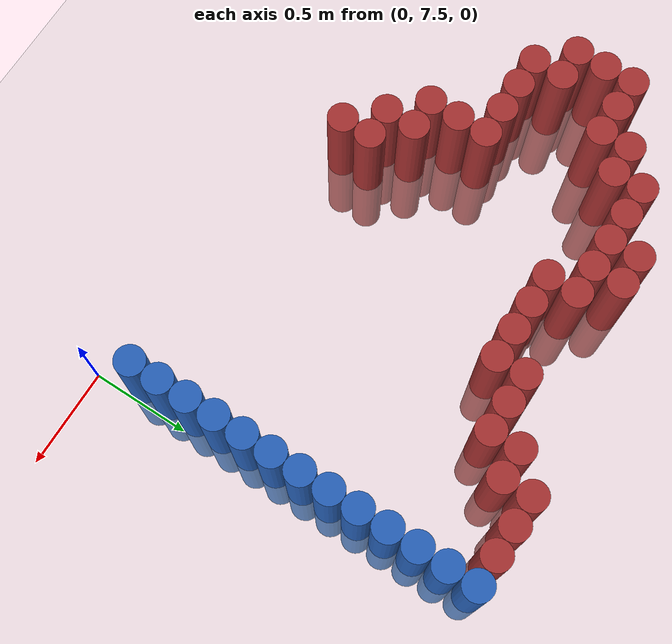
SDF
<sdf version="1.6">
 <world name="default">
  <model name="ground_plane">
   <static>1</static>
   <link name="link">
    <collision name="collision">
     <geometry><plane><normal>0 0 1</normal><size>100 100</size></plane></geometry>
     <surface><friction><ode><mu>100</mu><mu2>50</mu2></ode></friction></surface>
    </collision>
    <visual name="visual">
     <cast_shadows>0</cast_shadows>
     <geometry><plane><normal>0 0 1</normal><size>100 100</size></plane></geometry>
     <material>
      <script><uri>file://media/materials/scripts/gazebo.material</uri><name>Gazebo/Grey</name></script>
     </material>
    </visual>
   </link>
  </model>
  <model name="unit_cylinder_186">
   <static>1</static>
   <pose>-2.475000 8.625000 0.000000 0.000000 0.000000 0.000000</pose>
   <link name="link">
    <inertial>
     <mass>1</mass>
     <inertia><ixx>0.145833</ixx><ixy>0</ixy><ixz>0</ixz><iyy>0.145833</iyy><iyz>0</iyz><izz>0.125</izz></inertia>
    </inertial>
    <collision name="collision">
     <geometry><cylinder><radius>0.075000</radius><length>1</length></cylinder></geometry>
    </collision>
    <visual name="visual">
     <geometry><cylinder><radius>0.075000</radius><length>1</length></cylinder></geometry>
     <material>
      <ambient>0.648000 0.192000 0.192000 1</ambient>
      <diffuse>0.648000 0.192000 0.192000 1</diffuse>
     </material>
     <material>
      <script><name>Gazebo/Grey</name><uri>file://media/materials/scripts/gazebo.material</uri></script>
     </material>
    </visual>
   </link>
  </model>
  <model name="unit_cylinder_187">
   <static>1</static>
   <pose>-2.475000 8.775000 0.000000 0.000000 0.000000 0.000000</pose>
   <link name="link">
    <inertial>
     <mass>1</mass>
     <inertia><ixx>0.145833</ixx><ixy>0</ixy><ixz>0</ixz><iyy>0.145833</iyy><iyz>0</iyz><izz>0.125</izz></inertia>
    </inertial>
    <collision name="collision">
     <geometry><cylinder><radius>0.075000</radius><length>1</length></cylinder></geometry>
    </collision>
    <visual name="visual">
     <geometry><cylinder><radius>0.075000</radius><length>1</length></cylinder></geometry>
     <material>
      <ambient>0.648000 0.192000 0.192000 1</ambient>
      <diffuse>0.648000 0.192000 0.192000 1</diffuse>
     </material>
     <material>
      <script><name>Gazebo/Grey</name><uri>file://media/materials/scripts/gazebo.material</uri></script>
     </material>
    </visual>
   </link>
  </model>
  <model name="unit_cylinder_188">
   <static>1</static>
   <pose>-2.475000 8.925000 0.000000 0.000000 0.000000 0.000000</pose>
   <link name="link">
    <inertial>
     <mass>1</mass>
     <inertia><ixx>0.145833</ixx><ixy>0</ixy><ixz>0</ixz><iyy>0.145833</iyy><iyz>0</iyz><izz>0.125</izz></inertia>
    </inertial>
    <collision name="collision">
     <geometry><cylinder><radius>0.075000</radius><length>1</length></cylinder></geometry>
    </collision>
    <visual name="visual">
     <geometry><cylinder><radius>0.075000</radius><length>1</length></cylinder></geometry>
     <material>
      <ambient>0.648000 0.192000 0.192000 1</ambient>
      <diffuse>0.648000 0.192000 0.192000 1</diffuse>
     </material>
     <material>
      <script><name>Gazebo/Grey</name><uri>file://media/materials/scripts/gazebo.material</uri></script>
     </material>
    </visual>
   </link>
  </model>
  <model name="unit_cylinder_189">
   <static>1</static>
   <pose>-2.325000 8.475000 0.000000 0.000000 0.000000 0.000000</pose>
   <link name="link">
    <inertial>
     <mass>1</mass>
     <inertia><ixx>0.145833</ixx><ixy>0</ixy><ixz>0</ixz><iyy>0.145833</iyy><iyz>0</iyz><izz>0.125</izz></inertia>
    </inertial>
    <collision name="collision">
     <geometry><cylinder><radius>0.075000</radius><length>1</length></cylinder></geometry>
    </collision>
    <visual name="visual">
     <geometry><cylinder><radius>0.075000</radius><length>1</length></cylinder></geometry>
     <material>
      <ambient>0.648000 0.192000 0.192000 1</ambient>
      <diffuse>0.648000 0.192000 0.192000 1</diffuse>
     </material>
     <material>
      <script><name>Gazebo/Grey</name><uri>file://media/materials/scripts/gazebo.material</uri></script>
     </material>
    </visual>
   </link>
  </model>
  <model name="unit_cylinder_190">
   <static>1</static>
   <pose>-2.325000 8.625000 0.000000 0.000000 0.000000 0.000000</pose>
   <link name="link">
    <inertial>
     <mass>1</mass>
     <inertia><ixx>0.145833</ixx><ixy>0</ixy><ixz>0</ixz><iyy>0.145833</iyy><iyz>0</iyz><izz>0.125</izz></inertia>
    </inertial>
    <collision name="collision">
     <geometry><cylinder><radius>0.075000</radius><length>1</length></cylinder></geometry>
    </collision>
    <visual name="visual">
     <geometry><cylinder><radius>0.075000</radius><length>1</length></cylinder></geometry>
     <material>
      <ambient>0.648000 0.192000 0.192000 1</ambient>
      <diffuse>0.648000 0.192000 0.192000 1</diffuse>
     </material>
     <material>
      <script><name>Gazebo/Grey</name><uri>file://media/materials/scripts/gazebo.material</uri></script>
     </material>
    </visual>
   </link>
  </model>
  <model name="unit_cylinder_191">
   <static>1</static>
   <pose>-2.325000 8.925000 0.000000 0.000000 0.000000 0.000000</pose>
   <link name="link">
    <inertial>
     <mass>1</mass>
     <inertia><ixx>0.145833</ixx><ixy>0</ixy><ixz>0</ixz><iyy>0.145833</iyy><iyz>0</iyz><izz>0.125</izz></inertia>
    </inertial>
    <collision name="collision">
     <geometry><cylinder><radius>0.075000</radius><length>1</length></cylinder></geometry>
    </collision>
    <visual name="visual">
     <geometry><cylinder><radius>0.075000</radius><length>1</length></cylinder></geometry>
     <material>
      <ambient>0.648000 0.192000 0.192000 1</ambient>
      <diffuse>0.648000 0.192000 0.192000 1</diffuse>
     </material>
     <material>
      <script><name>Gazebo/Grey</name><uri>file://media/materials/scripts/gazebo.material</uri></script>
     </material>
    </visual>
   </link>
  </model>
  <model name="unit_cylinder_192">
   <static>1</static>
   <pose>-2.175000 8.475000 0.000000 0.000000 0.000000 0.000000</pose>
   <link name="link">
    <inertial>
     <mass>1</mass>
     <inertia><ixx>0.145833</ixx><ixy>0</ixy><ixz>0</ixz><iyy>0.145833</iyy><iyz>0</iyz><izz>0.125</izz></inertia>
    </inertial>
    <collision name="collision">
     <geometry><cylinder><radius>0.075000</radius><length>1</length></cylinder></geometry>
    </collision>
    <visual name="visual">
     <geometry><cylinder><radius>0.075000</radius><length>1</length></cylinder></geometry>
     <material>
      <ambient>0.648000 0.192000 0.192000 1</ambient>
      <diffuse>0.648000 0.192000 0.192000 1</diffuse>
     </material>
     <material>
      <script><name>Gazebo/Grey</name><uri>file://media/materials/scripts/gazebo.material</uri></script>
     </material>
    </visual>
   </link>
  </model>
  <model name="unit_cylinder_193">
   <static>1</static>
   <pose>-2.175000 8.925000 0.000000 0.000000 0.000000 0.000000</pose>
   <link name="link">
    <inertial>
     <mass>1</mass>
     <inertia><ixx>0.145833</ixx><ixy>0</ixy><ixz>0</ixz><iyy>0.145833</iyy><iyz>0</iyz><izz>0.125</izz></inertia>
    </inertial>
    <collision name="collision">
     <geometry><cylinder><radius>0.075000</radius><length>1</length></cylinder></geometry>
    </collision>
    <visual name="visual">
     <geometry><cylinder><radius>0.075000</radius><length>1</length></cylinder></geometry>
     <material>
      <ambient>0.648000 0.192000 0.192000 1</ambient>
      <diffuse>0.648000 0.192000 0.192000 1</diffuse>
     </material>
     <material>
      <script><name>Gazebo/Grey</name><uri>file://media/materials/scripts/gazebo.material</uri></script>
     </material>
    </visual>
   </link>
  </model>
  <model name="unit_cylinder_194">
   <static>1</static>
   <pose>-2.175000 9.075000 0.000000 0.000000 0.000000 0.000000</pose>
   <link name="link">
    <inertial>
     <mass>1</mass>
     <inertia><ixx>0.145833</ixx><ixy>0</ixy><ixz>0</ixz><iyy>0.145833</iyy><iyz>0</iyz><izz>0.125</izz></inertia>
    </inertial>
    <collision name="collision">
     <geometry><cylinder><radius>0.075000</radius><length>1</length></cylinder></geometry>
    </collision>
    <visual name="visual">
     <geometry><cylinder><radius>0.075000</radius><length>1</length></cylinder></geometry>
     <material>
      <ambient>0.648000 0.192000 0.192000 1</ambient>
      <diffuse>0.648000 0.192000 0.192000 1</diffuse>
     </material>
     <material>
      <script><name>Gazebo/Grey</name><uri>file://media/materials/scripts/gazebo.material</uri></script>
     </material>
    </visual>
   </link>
  </model>
  <model name="unit_cylinder_195">
   <static>1</static>
   <pose>-2.025000 8.475000 0.000000 0.000000 0.000000 0.000000</pose>
   <link name="link">
    <inertial>
     <mass>1</mass>
     <inertia><ixx>0.145833</ixx><ixy>0</ixy><ixz>0</ixz><iyy>0.145833</iyy><iyz>0</iyz><izz>0.125</izz></inertia>
    </inertial>
    <collision name="collision">
     <geometry><cylinder><radius>0.075000</radius><length>1</length></cylinder></geometry>
    </collision>
    <visual name="visual">
     <geometry><cylinder><radius>0.075000</radius><length>1</length></cylinder></geometry>
     <material>
      <ambient>0.648000 0.192000 0.192000 1</ambient>
      <diffuse>0.648000 0.192000 0.192000 1</diffuse>
     </material>
     <material>
      <script><name>Gazebo/Grey</name><uri>file://media/materials/scripts/gazebo.material</uri></script>
     </material>
    </visual>
   </link>
  </model>
  <model name="unit_cylinder_196">
   <static>1</static>
   <pose>-2.025000 9.075000 0.000000 0.000000 0.000000 0.000000</pose>
   <link name="link">
    <inertial>
     <mass>1</mass>
     <inertia><ixx>0.145833</ixx><ixy>0</ixy><ixz>0</ixz><iyy>0.145833</iyy><iyz>0</iyz><izz>0.125</izz></inertia>
    </inertial>
    <collision name="collision">
     <geometry><cylinder><radius>0.075000</radius><length>1</length></cylinder></geometry>
    </collision>
    <visual name="visual">
     <geometry><cylinder><radius>0.075000</radius><length>1</length></cylinder></geometry>
     <material>
      <ambient>0.648000 0.192000 0.192000 1</ambient>
      <diffuse>0.648000 0.192000 0.192000 1</diffuse>
     </material>
     <material>
      <script><name>Gazebo/Grey</name><uri>file://media/materials/scripts/gazebo.material</uri></script>
     </material>
    </visual>
   </link>
  </model>
  <model name="unit_cylinder_197">
   <static>1</static>
   <pose>-2.025000 9.225000 0.000000 0.000000 0.000000 0.000000</pose>
   <link name="link">
    <inertial>
     <mass>1</mass>
     <inertia><ixx>0.145833</ixx><ixy>0</ixy><ixz>0</ixz><iyy>0.145833</iyy><iyz>0</iyz><izz>0.125</izz></inertia>
    </inertial>
    <collision name="collision">
     <geometry><cylinder><radius>0.075000</radius><length>1</length></cylinder></geometry>
    </collision>
    <visual name="visual">
     <geometry><cylinder><radius>0.075000</radius><length>1</length></cylinder></geometry>
     <material>
      <ambient>0.648000 0.192000 0.192000 1</ambient>
      <diffuse>0.648000 0.192000 0.192000 1</diffuse>
     </material>
     <material>
      <script><name>Gazebo/Grey</name><uri>file://media/materials/scripts/gazebo.material</uri></script>
     </material>
    </visual>
   </link>
  </model>
  <model name="unit_cylinder_198">
   <static>1</static>
   <pose>-1.875000 8.175000 0.000000 0.000000 0.000000 0.000000</pose>
   <link name="link">
    <inertial>
     <mass>1</mass>
     <inertia><ixx>0.145833</ixx><ixy>0</ixy><ixz>0</ixz><iyy>0.145833</iyy><iyz>0</iyz><izz>0.125</izz></inertia>
    </inertial>
    <collision name="collision">
     <geometry><cylinder><radius>0.075000</radius><length>1</length></cylinder></geometry>
    </collision>
    <visual name="visual">
     <geometry><cylinder><radius>0.075000</radius><length>1</length></cylinder></geometry>
     <material>
      <ambient>0.648000 0.192000 0.192000 1</ambient>
      <diffuse>0.648000 0.192000 0.192000 1</diffuse>
     </material>
     <material>
      <script><name>Gazebo/Grey</name><uri>file://media/materials/scripts/gazebo.material</uri></script>
     </material>
    </visual>
   </link>
  </model>
  <model name="unit_cylinder_199">
   <static>1</static>
   <pose>-1.875000 8.325000 0.000000 0.000000 0.000000 0.000000</pose>
   <link name="link">
    <inertial>
     <mass>1</mass>
     <inertia><ixx>0.145833</ixx><ixy>0</ixy><ixz>0</ixz><iyy>0.145833</iyy><iyz>0</iyz><izz>0.125</izz></inertia>
    </inertial>
    <collision name="collision">
     <geometry><cylinder><radius>0.075000</radius><length>1</length></cylinder></geometry>
    </collision>
    <visual name="visual">
     <geometry><cylinder><radius>0.075000</radius><length>1</length></cylinder></geometry>
     <material>
      <ambient>0.648000 0.192000 0.192000 1</ambient>
      <diffuse>0.648000 0.192000 0.192000 1</diffuse>
     </material>
     <material>
      <script><name>Gazebo/Grey</name><uri>file://media/materials/scripts/gazebo.material</uri></script>
     </material>
    </visual>
   </link>
  </model>
  <model name="unit_cylinder_200">
   <static>1</static>
   <pose>-1.875000 8.475000 0.000000 0.000000 0.000000 0.000000</pose>
   <link name="link">
    <inertial>
     <mass>1</mass>
     <inertia><ixx>0.145833</ixx><ixy>0</ixy><ixz>0</ixz><iyy>0.145833</iyy><iyz>0</iyz><izz>0.125</izz></inertia>
    </inertial>
    <collision name="collision">
     <geometry><cylinder><radius>0.075000</radius><length>1</length></cylinder></geometry>
    </collision>
    <visual name="visual">
     <geometry><cylinder><radius>0.075000</radius><length>1</length></cylinder></geometry>
     <material>
      <ambient>0.648000 0.192000 0.192000 1</ambient>
      <diffuse>0.648000 0.192000 0.192000 1</diffuse>
     </material>
     <material>
      <script><name>Gazebo/Grey</name><uri>file://media/materials/scripts/gazebo.material</uri></script>
     </material>
    </visual>
   </link>
  </model>
  <model name="unit_cylinder_201">
   <static>1</static>
   <pose>-1.875000 9.225000 0.000000 0.000000 0.000000 0.000000</pose>
   <link name="link">
    <inertial>
     <mass>1</mass>
     <inertia><ixx>0.145833</ixx><ixy>0</ixy><ixz>0</ixz><iyy>0.145833</iyy><iyz>0</iyz><izz>0.125</izz></inertia>
    </inertial>
    <collision name="collision">
     <geometry><cylinder><radius>0.075000</radius><length>1</length></cylinder></geometry>
    </collision>
    <visual name="visual">
     <geometry><cylinder><radius>0.075000</radius><length>1</length></cylinder></geometry>
     <material>
      <ambient>0.648000 0.192000 0.192000 1</ambient>
      <diffuse>0.648000 0.192000 0.192000 1</diffuse>
     </material>
     <material>
      <script><name>Gazebo/Grey</name><uri>file://media/materials/scripts/gazebo.material</uri></script>
     </material>
    </visual>
   </link>
  </model>
  <model name="unit_cylinder_202">
   <static>1</static>
   <pose>-1.725000 8.025000 0.000000 0.000000 0.000000 0.000000</pose>
   <link name="link">
    <inertial>
     <mass>1</mass>
     <inertia><ixx>0.145833</ixx><ixy>0</ixy><ixz>0</ixz><iyy>0.145833</iyy><iyz>0</iyz><izz>0.125</izz></inertia>
    </inertial>
    <collision name="collision">
     <geometry><cylinder><radius>0.075000</radius><length>1</length></cylinder></geometry>
    </collision>
    <visual name="visual">
     <geometry><cylinder><radius>0.075000</radius><length>1</length></cylinder></geometry>
     <material>
      <ambient>0.648000 0.192000 0.192000 1</ambient>
      <diffuse>0.648000 0.192000 0.192000 1</diffuse>
     </material>
     <material>
      <script><name>Gazebo/Grey</name><uri>file://media/materials/scripts/gazebo.material</uri></script>
     </material>
    </visual>
   </link>
  </model>
  <model name="unit_cylinder_203">
   <static>1</static>
   <pose>-1.725000 8.175000 0.000000 0.000000 0.000000 0.000000</pose>
   <link name="link">
    <inertial>
     <mass>1</mass>
     <inertia><ixx>0.145833</ixx><ixy>0</ixy><ixz>0</ixz><iyy>0.145833</iyy><iyz>0</iyz><izz>0.125</izz></inertia>
    </inertial>
    <collision name="collision">
     <geometry><cylinder><radius>0.075000</radius><length>1</length></cylinder></geometry>
    </collision>
    <visual name="visual">
     <geometry><cylinder><radius>0.075000</radius><length>1</length></cylinder></geometry>
     <material>
      <ambient>0.648000 0.192000 0.192000 1</ambient>
      <diffuse>0.648000 0.192000 0.192000 1</diffuse>
     </material>
     <material>
      <script><name>Gazebo/Grey</name><uri>file://media/materials/scripts/gazebo.material</uri></script>
     </material>
    </visual>
   </link>
  </model>
  <model name="unit_cylinder_204">
   <static>1</static>
   <pose>-1.725000 9.225000 0.000000 0.000000 0.000000 0.000000</pose>
   <link name="link">
    <inertial>
     <mass>1</mass>
     <inertia><ixx>0.145833</ixx><ixy>0</ixy><ixz>0</ixz><iyy>0.145833</iyy><iyz>0</iyz><izz>0.125</izz></inertia>
    </inertial>
    <collision name="collision">
     <geometry><cylinder><radius>0.075000</radius><length>1</length></cylinder></geometry>
    </collision>
    <visual name="visual">
     <geometry><cylinder><radius>0.075000</radius><length>1</length></cylinder></geometry>
     <material>
      <ambient>0.648000 0.192000 0.192000 1</ambient>
      <diffuse>0.648000 0.192000 0.192000 1</diffuse>
     </material>
     <material>
      <script><name>Gazebo/Grey</name><uri>file://media/materials/scripts/gazebo.material</uri></script>
     </material>
    </visual>
   </link>
  </model>
  <model name="unit_cylinder_205">
   <static>1</static>
   <pose>-1.725000 9.375000 0.000000 0.000000 0.000000 0.000000</pose>
   <link name="link">
    <inertial>
     <mass>1</mass>
     <inertia><ixx>0.145833</ixx><ixy>0</ixy><ixz>0</ixz><iyy>0.145833</iyy><iyz>0</iyz><izz>0.125</izz></inertia>
    </inertial>
    <collision name="collision">
     <geometry><cylinder><radius>0.075000</radius><length>1</length></cylinder></geometry>
    </collision>
    <visual name="visual">
     <geometry><cylinder><radius>0.075000</radius><length>1</length></cylinder></geometry>
     <material>
      <ambient>0.648000 0.192000 0.192000 1</ambient>
      <diffuse>0.648000 0.192000 0.192000 1</diffuse>
     </material>
     <material>
      <script><name>Gazebo/Grey</name><uri>file://media/materials/scripts/gazebo.material</uri></script>
     </material>
    </visual>
   </link>
  </model>
  <model name="unit_cylinder_207">
   <static>1</static>
   <pose>-1.575000 7.875000 0.000000 0.000000 0.000000 0.000000</pose>
   <link name="link">
    <inertial>
     <mass>1</mass>
     <inertia><ixx>0.145833</ixx><ixy>0</ixy><ixz>0</ixz><iyy>0.145833</iyy><iyz>0</iyz><izz>0.125</izz></inertia>
    </inertial>
    <collision name="collision">
     <geometry><cylinder><radius>0.075000</radius><length>1</length></cylinder></geometry>
    </collision>
    <visual name="visual">
     <geometry><cylinder><radius>0.075000</radius><length>1</length></cylinder></geometry>
     <material>
      <ambient>0.648000 0.192000 0.192000 1</ambient>
      <diffuse>0.648000 0.192000 0.192000 1</diffuse>
     </material>
     <material>
      <script><name>Gazebo/Grey</name><uri>file://media/materials/scripts/gazebo.material</uri></script>
     </material>
    </visual>
   </link>
  </model>
  <model name="unit_cylinder_208">
   <static>1</static>
   <pose>-1.575000 8.025000 0.000000 0.000000 0.000000 0.000000</pose>
   <link name="link">
    <inertial>
     <mass>1</mass>
     <inertia><ixx>0.145833</ixx><ixy>0</ixy><ixz>0</ixz><iyy>0.145833</iyy><iyz>0</iyz><izz>0.125</izz></inertia>
    </inertial>
    <collision name="collision">
     <geometry><cylinder><radius>0.075000</radius><length>1</length></cylinder></geometry>
    </collision>
    <visual name="visual">
     <geometry><cylinder><radius>0.075000</radius><length>1</length></cylinder></geometry>
     <material>
      <ambient>0.648000 0.192000 0.192000 1</ambient>
      <diffuse>0.648000 0.192000 0.192000 1</diffuse>
     </material>
     <material>
      <script><name>Gazebo/Grey</name><uri>file://media/materials/scripts/gazebo.material</uri></script>
     </material>
    </visual>
   </link>
  </model>
  <model name="unit_cylinder_209">
   <static>1</static>
   <pose>-1.575000 9.225000 0.000000 0.000000 0.000000 0.000000</pose>
   <link name="link">
    <inertial>
     <mass>1</mass>
     <inertia><ixx>0.145833</ixx><ixy>0</ixy><ixz>0</ixz><iyy>0.145833</iyy><iyz>0</iyz><izz>0.125</izz></inertia>
    </inertial>
    <collision name="collision">
     <geometry><cylinder><radius>0.075000</radius><length>1</length></cylinder></geometry>
    </collision>
    <visual name="visual">
     <geometry><cylinder><radius>0.075000</radius><length>1</length></cylinder></geometry>
     <material>
      <ambient>0.648000 0.192000 0.192000 1</ambient>
      <diffuse>0.648000 0.192000 0.192000 1</diffuse>
     </material>
     <material>
      <script><name>Gazebo/Grey</name><uri>file://media/materials/scripts/gazebo.material</uri></script>
     </material>
    </visual>
   </link>
  </model>
  <model name="unit_cylinder_210">
   <static>1</static>
   <pose>-1.575000 9.375000 0.000000 0.000000 0.000000 0.000000</pose>
   <link name="link">
    <inertial>
     <mass>1</mass>
     <inertia><ixx>0.145833</ixx><ixy>0</ixy><ixz>0</ixz><iyy>0.145833</iyy><iyz>0</iyz><izz>0.125</izz></inertia>
    </inertial>
    <collision name="collision">
     <geometry><cylinder><radius>0.075000</radius><length>1</length></cylinder></geometry>
    </collision>
    <visual name="visual">
     <geometry><cylinder><radius>0.075000</radius><length>1</length></cylinder></geometry>
     <material>
      <ambient>0.648000 0.192000 0.192000 1</ambient>
      <diffuse>0.648000 0.192000 0.192000 1</diffuse>
     </material>
     <material>
      <script><name>Gazebo/Grey</name><uri>file://media/materials/scripts/gazebo.material</uri></script>
     </material>
    </visual>
   </link>
  </model>
  <model name="unit_cylinder_213">
   <static>1</static>
   <pose>-1.425000 9.075000 0.000000 0.000000 0.000000 0.000000</pose>
   <link name="link">
    <inertial>
     <mass>1</mass>
     <inertia><ixx>0.145833</ixx><ixy>0</ixy><ixz>0</ixz><iyy>0.145833</iyy><iyz>0</iyz><izz>0.125</izz></inertia>
    </inertial>
    <collision name="collision">
     <geometry><cylinder><radius>0.075000</radius><length>1</length></cylinder></geometry>
    </collision>
    <visual name="visual">
     <geometry><cylinder><radius>0.075000</radius><length>1</length></cylinder></geometry>
     <material>
      <ambient>0.648000 0.192000 0.192000 1</ambient>
      <diffuse>0.648000 0.192000 0.192000 1</diffuse>
     </material>
     <material>
      <script><name>Gazebo/Grey</name><uri>file://media/materials/scripts/gazebo.material</uri></script>
     </material>
    </visual>
   </link>
  </model>
  <model name="unit_cylinder_214">
   <static>1</static>
   <pose>-1.425000 9.225000 0.000000 0.000000 0.000000 0.000000</pose>
   <link name="link">
    <inertial>
     <mass>1</mass>
     <inertia><ixx>0.145833</ixx><ixy>0</ixy><ixz>0</ixz><iyy>0.145833</iyy><iyz>0</iyz><izz>0.125</izz></inertia>
    </inertial>
    <collision name="collision">
     <geometry><cylinder><radius>0.075000</radius><length>1</length></cylinder></geometry>
    </collision>
    <visual name="visual">
     <geometry><cylinder><radius>0.075000</radius><length>1</length></cylinder></geometry>
     <material>
      <ambient>0.648000 0.192000 0.192000 1</ambient>
      <diffuse>0.648000 0.192000 0.192000 1</diffuse>
     </material>
     <material>
      <script><name>Gazebo/Grey</name><uri>file://media/materials/scripts/gazebo.material</uri></script>
     </material>
    </visual>
   </link>
  </model>
  <model name="unit_cylinder_217">
   <static>1</static>
   <pose>-1.275000 9.075000 0.000000 0.000000 0.000000 0.000000</pose>
   <link name="link">
    <inertial>
     <mass>1</mass>
     <inertia><ixx>0.145833</ixx><ixy>0</ixy><ixz>0</ixz><iyy>0.145833</iyy><iyz>0</iyz><izz>0.125</izz></inertia>
    </inertial>
    <collision name="collision">
     <geometry><cylinder><radius>0.075000</radius><length>1</length></cylinder></geometry>
    </collision>
    <visual name="visual">
     <geometry><cylinder><radius>0.075000</radius><length>1</length></cylinder></geometry>
     <material>
      <ambient>0.648000 0.192000 0.192000 1</ambient>
      <diffuse>0.648000 0.192000 0.192000 1</diffuse>
     </material>
     <material>
      <script><name>Gazebo/Grey</name><uri>file://media/materials/scripts/gazebo.material</uri></script>
     </material>
    </visual>
   </link>
  </model>
  <model name="unit_cylinder_224">
   <static>1</static>
   <pose>-1.125000 9.075000 0.000000 0.000000 0.000000 0.000000</pose>
   <link name="link">
    <inertial>
     <mass>1</mass>
     <inertia><ixx>0.145833</ixx><ixy>0</ixy><ixz>0</ixz><iyy>0.145833</iyy><iyz>0</iyz><izz>0.125</izz></inertia>
    </inertial>
    <collision name="collision">
     <geometry><cylinder><radius>0.075000</radius><length>1</length></cylinder></geometry>
    </collision>
    <visual name="visual">
     <geometry><cylinder><radius>0.075000</radius><length>1</length></cylinder></geometry>
     <material>
      <ambient>0.648000 0.192000 0.192000 1</ambient>
      <diffuse>0.648000 0.192000 0.192000 1</diffuse>
     </material>
     <material>
      <script><name>Gazebo/Grey</name><uri>file://media/materials/scripts/gazebo.material</uri></script>
     </material>
    </visual>
   </link>
  </model>
  <model name="unit_cylinder_230">
   <static>1</static>
   <pose>-0.975000 9.075000 0.000000 0.000000 0.000000 0.000000</pose>
   <link name="link">
    <inertial>
     <mass>1</mass>
     <inertia><ixx>0.145833</ixx><ixy>0</ixy><ixz>0</ixz><iyy>0.145833</iyy><iyz>0</iyz><izz>0.125</izz></inertia>
    </inertial>
    <collision name="collision">
     <geometry><cylinder><radius>0.075000</radius><length>1</length></cylinder></geometry>
    </collision>
    <visual name="visual">
     <geometry><cylinder><radius>0.075000</radius><length>1</length></cylinder></geometry>
     <material>
      <ambient>0.648000 0.192000 0.192000 1</ambient>
      <diffuse>0.648000 0.192000 0.192000 1</diffuse>
     </material>
     <material>
      <script><name>Gazebo/Grey</name><uri>file://media/materials/scripts/gazebo.material</uri></script>
     </material>
    </visual>
   </link>
  </model>
  <model name="unit_cylinder_231">
   <static>1</static>
   <pose>-0.975000 9.225000 0.000000 0.000000 0.000000 0.000000</pose>
   <link name="link">
    <inertial>
     <mass>1</mass>
     <inertia><ixx>0.145833</ixx><ixy>0</ixy><ixz>0</ixz><iyy>0.145833</iyy><iyz>0</iyz><izz>0.125</izz></inertia>
    </inertial>
    <collision name="collision">
     <geometry><cylinder><radius>0.075000</radius><length>1</length></cylinder></geometry>
    </collision>
    <visual name="visual">
     <geometry><cylinder><radius>0.075000</radius><length>1</length></cylinder></geometry>
     <material>
      <ambient>0.648000 0.192000 0.192000 1</ambient>
      <diffuse>0.648000 0.192000 0.192000 1</diffuse>
     </material>
     <material>
      <script><name>Gazebo/Grey</name><uri>file://media/materials/scripts/gazebo.material</uri></script>
     </material>
    </visual>
   </link>
  </model>
  <model name="unit_cylinder_240">
   <static>1</static>
   <pose>-0.825000 9.225000 0.000000 0.000000 0.000000 0.000000</pose>
   <link name="link">
    <inertial>
     <mass>1</mass>
     <inertia><ixx>0.145833</ixx><ixy>0</ixy><ixz>0</ixz><iyy>0.145833</iyy><iyz>0</iyz><izz>0.125</izz></inertia>
    </inertial>
    <collision name="collision">
     <geometry><cylinder><radius>0.075000</radius><length>1</length></cylinder></geometry>
    </collision>
    <visual name="visual">
     <geometry><cylinder><radius>0.075000</radius><length>1</length></cylinder></geometry>
     <material>
      <ambient>0.648000 0.192000 0.192000 1</ambient>
      <diffuse>0.648000 0.192000 0.192000 1</diffuse>
     </material>
     <material>
      <script><name>Gazebo/Grey</name><uri>file://media/materials/scripts/gazebo.material</uri></script>
     </material>
    </visual>
   </link>
  </model>
  <model name="unit_cylinder_246">
   <static>1</static>
   <pose>-0.675000 9.225000 0.000000 0.000000 0.000000 0.000000</pose>
   <link name="link">
    <inertial>
     <mass>1</mass>
     <inertia><ixx>0.145833</ixx><ixy>0</ixy><ixz>0</ixz><iyy>0.145833</iyy><iyz>0</iyz><izz>0.125</izz></inertia>
    </inertial>
    <collision name="collision">
     <geometry><cylinder><radius>0.075000</radius><length>1</length></cylinder></geometry>
    </collision>
    <visual name="visual">
     <geometry><cylinder><radius>0.075000</radius><length>1</length></cylinder></geometry>
     <material>
      <ambient>0.648000 0.192000 0.192000 1</ambient>
      <diffuse>0.648000 0.192000 0.192000 1</diffuse>
     </material>
     <material>
      <script><name>Gazebo/Grey</name><uri>file://media/materials/scripts/gazebo.material</uri></script>
     </material>
    </visual>
   </link>
  </model>
  <model name="unit_cylinder_247">
   <static>1</static>
   <pose>-0.675000 9.375000 0.000000 0.000000 0.000000 0.000000</pose>
   <link name="link">
    <inertial>
     <mass>1</mass>
     <inertia><ixx>0.145833</ixx><ixy>0</ixy><ixz>0</ixz><iyy>0.145833</iyy><iyz>0</iyz><izz>0.125</izz></inertia>
    </inertial>
    <collision name="collision">
     <geometry><cylinder><radius>0.075000</radius><length>1</length></cylinder></geometry>
    </collision>
    <visual name="visual">
     <geometry><cylinder><radius>0.075000</radius><length>1</length></cylinder></geometry>
     <material>
      <ambient>0.648000 0.192000 0.192000 1</ambient>
      <diffuse>0.648000 0.192000 0.192000 1</diffuse>
     </material>
     <material>
      <script><name>Gazebo/Grey</name><uri>file://media/materials/scripts/gazebo.material</uri></script>
     </material>
    </visual>
   </link>
  </model>
  <model name="unit_cylinder_253">
   <static>1</static>
   <pose>-0.525000 9.375000 0.000000 0.000000 0.000000 0.000000</pose>
   <link name="link">
    <inertial>
     <mass>1</mass>
     <inertia><ixx>0.145833</ixx><ixy>0</ixy><ixz>0</ixz><iyy>0.145833</iyy><iyz>0</iyz><izz>0.125</izz></inertia>
    </inertial>
    <collision name="collision">
     <geometry><cylinder><radius>0.075000</radius><length>1</length></cylinder></geometry>
    </collision>
    <visual name="visual">
     <geometry><cylinder><radius>0.075000</radius><length>1</length></cylinder></geometry>
     <material>
      <ambient>0.648000 0.192000 0.192000 1</ambient>
      <diffuse>0.648000 0.192000 0.192000 1</diffuse>
     </material>
     <material>
      <script><name>Gazebo/Grey</name><uri>file://media/materials/scripts/gazebo.material</uri></script>
     </material>
    </visual>
   </link>
  </model>
  <model name="unit_cylinder_254">
   <static>1</static>
   <pose>-0.525000 9.525000 0.000000 0.000000 0.000000 0.000000</pose>
   <link name="link">
    <inertial>
     <mass>1</mass>
     <inertia><ixx>0.145833</ixx><ixy>0</ixy><ixz>0</ixz><iyy>0.145833</iyy><iyz>0</iyz><izz>0.125</izz></inertia>
    </inertial>
    <collision name="collision">
     <geometry><cylinder><radius>0.075000</radius><length>1</length></cylinder></geometry>
    </collision>
    <visual name="visual">
     <geometry><cylinder><radius>0.075000</radius><length>1</length></cylinder></geometry>
     <material>
      <ambient>0.648000 0.192000 0.192000 1</ambient>
      <diffuse>0.648000 0.192000 0.192000 1</diffuse>
     </material>
     <material>
      <script><name>Gazebo/Grey</name><uri>file://media/materials/scripts/gazebo.material</uri></script>
     </material>
    </visual>
   </link>
  </model>
  <model name="unit_cylinder_259">
   <static>1</static>
   <pose>-0.375000 9.525000 0.000000 0.000000 0.000000 0.000000</pose>
   <link name="link">
    <inertial>
     <mass>1</mass>
     <inertia><ixx>0.145833</ixx><ixy>0</ixy><ixz>0</ixz><iyy>0.145833</iyy><iyz>0</iyz><izz>0.125</izz></inertia>
    </inertial>
    <collision name="collision">
     <geometry><cylinder><radius>0.075000</radius><length>1</length></cylinder></geometry>
    </collision>
    <visual name="visual">
     <geometry><cylinder><radius>0.075000</radius><length>1</length></cylinder></geometry>
     <material>
      <ambient>0.648000 0.192000 0.192000 1</ambient>
      <diffuse>0.648000 0.192000 0.192000 1</diffuse>
     </material>
     <material>
      <script><name>Gazebo/Grey</name><uri>file://media/materials/scripts/gazebo.material</uri></script>
     </material>
    </visual>
   </link>
  </model>
  <model name="unit_cylinder_265">
   <static>1</static>
   <pose>-0.225000 9.525000 0.000000 0.000000 0.000000 0.000000</pose>
   <link name="link">
    <inertial>
     <mass>1</mass>
     <inertia><ixx>0.145833</ixx><ixy>0</ixy><ixz>0</ixz><iyy>0.145833</iyy><iyz>0</iyz><izz>0.125</izz></inertia>
    </inertial>
    <collision name="collision">
     <geometry><cylinder><radius>0.075000</radius><length>1</length></cylinder></geometry>
    </collision>
    <visual name="visual">
     <geometry><cylinder><radius>0.075000</radius><length>1</length></cylinder></geometry>
     <material>
      <ambient>0.648000 0.192000 0.192000 1</ambient>
      <diffuse>0.648000 0.192000 0.192000 1</diffuse>
     </material>
     <material>
      <script><name>Gazebo/Grey</name><uri>file://media/materials/scripts/gazebo.material</uri></script>
     </material>
    </visual>
   </link>
  </model>
  <model name="unit_cylinder_283">
   <static>1</static>
   <pose>-0.075000 7.725000 0.000000 0.000000 0.000000 0.000000</pose>
   <link name="link">
    <inertial>
     <mass>1</mass>
     <inertia><ixx>0.145833</ixx><ixy>0</ixy><ixz>0</ixz><iyy>0.145833</iyy><iyz>0</iyz><izz>0.125</izz></inertia>
    </inertial>
    <collision name="collision">
     <geometry><cylinder><radius>0.075000</radius><length>1</length></cylinder></geometry>
    </collision>
    <visual name="visual">
     <geometry><cylinder><radius>0.075000</radius><length>1</length></cylinder></geometry>
     <material>
      <ambient>0.152000 0.379000 0.720000 1</ambient>
      <diffuse>0.152000 0.379000 0.720000 1</diffuse>
     </material>
     <material>
      <script><name>Gazebo/Grey</name><uri>file://media/materials/scripts/gazebo.material</uri></script>
     </material>
    </visual>
   </link>
  </model>
  <model name="unit_cylinder_284">
   <static>1</static>
   <pose>-0.075000 7.875000 0.000000 0.000000 0.000000 0.000000</pose>
   <link name="link">
    <inertial>
     <mass>1</mass>
     <inertia><ixx>0.145833</ixx><ixy>0</ixy><ixz>0</ixz><iyy>0.145833</iyy><iyz>0</iyz><izz>0.125</izz></inertia>
    </inertial>
    <collision name="collision">
     <geometry><cylinder><radius>0.075000</radius><length>1</length></cylinder></geometry>
    </collision>
    <visual name="visual">
     <geometry><cylinder><radius>0.075000</radius><length>1</length></cylinder></geometry>
     <material>
      <ambient>0.152000 0.379000 0.720000 1</ambient>
      <diffuse>0.152000 0.379000 0.720000 1</diffuse>
     </material>
     <material>
      <script><name>Gazebo/Grey</name><uri>file://media/materials/scripts/gazebo.material</uri></script>
     </material>
    </visual>
   </link>
  </model>
  <model name="unit_cylinder_285">
   <static>1</static>
   <pose>-0.075000 8.025000 0.000000 0.000000 0.000000 0.000000</pose>
   <link name="link">
    <inertial>
     <mass>1</mass>
     <inertia><ixx>0.145833</ixx><ixy>0</ixy><ixz>0</ixz><iyy>0.145833</iyy><iyz>0</iyz><izz>0.125</izz></inertia>
    </inertial>
    <collision name="collision">
     <geometry><cylinder><radius>0.075000</radius><length>1</length></cylinder></geometry>
    </collision>
    <visual name="visual">
     <geometry><cylinder><radius>0.075000</radius><length>1</length></cylinder></geometry>
     <material>
      <ambient>0.152000 0.379000 0.720000 1</ambient>
      <diffuse>0.152000 0.379000 0.720000 1</diffuse>
     </material>
     <material>
      <script><name>Gazebo/Grey</name><uri>file://media/materials/scripts/gazebo.material</uri></script>
     </material>
    </visual>
   </link>
  </model>
  <model name="unit_cylinder_286">
   <static>1</static>
   <pose>-0.075000 8.175000 0.000000 0.000000 0.000000 0.000000</pose>
   <link name="link">
    <inertial>
     <mass>1</mass>
     <inertia><ixx>0.145833</ixx><ixy>0</ixy><ixz>0</ixz><iyy>0.145833</iyy><iyz>0</iyz><izz>0.125</izz></inertia>
    </inertial>
    <collision name="collision">
     <geometry><cylinder><radius>0.075000</radius><length>1</length></cylinder></geometry>
    </collision>
    <visual name="visual">
     <geometry><cylinder><radius>0.075000</radius><length>1</length></cylinder></geometry>
     <material>
      <ambient>0.152000 0.379000 0.720000 1</ambient>
      <diffuse>0.152000 0.379000 0.720000 1</diffuse>
     </material>
     <material>
      <script><name>Gazebo/Grey</name><uri>file://media/materials/scripts/gazebo.material</uri></script>
     </material>
    </visual>
   </link>
  </model>
  <model name="unit_cylinder_287">
   <static>1</static>
   <pose>-0.075000 8.325000 0.000000 0.000000 0.000000 0.000000</pose>
   <link name="link">
    <inertial>
     <mass>1</mass>
     <inertia><ixx>0.145833</ixx><ixy>0</ixy><ixz>0</ixz><iyy>0.145833</iyy><iyz>0</iyz><izz>0.125</izz></inertia>
    </inertial>
    <collision name="collision">
     <geometry><cylinder><radius>0.075000</radius><length>1</length></cylinder></geometry>
    </collision>
    <visual name="visual">
     <geometry><cylinder><radius>0.075000</radius><length>1</length></cylinder></geometry>
     <material>
      <ambient>0.152000 0.379000 0.720000 1</ambient>
      <diffuse>0.152000 0.379000 0.720000 1</diffuse>
     </material>
     <material>
      <script><name>Gazebo/Grey</name><uri>file://media/materials/scripts/gazebo.material</uri></script>
     </material>
    </visual>
   </link>
  </model>
  <model name="unit_cylinder_288">
   <static>1</static>
   <pose>-0.075000 8.475000 0.000000 0.000000 0.000000 0.000000</pose>
   <link name="link">
    <inertial>
     <mass>1</mass>
     <inertia><ixx>0.145833</ixx><ixy>0</ixy><ixz>0</ixz><iyy>0.145833</iyy><iyz>0</iyz><izz>0.125</izz></inertia>
    </inertial>
    <collision name="collision">
     <geometry><cylinder><radius>0.075000</radius><length>1</length></cylinder></geometry>
    </collision>
    <visual name="visual">
     <geometry><cylinder><radius>0.075000</radius><length>1</length></cylinder></geometry>
     <material>
      <ambient>0.152000 0.379000 0.720000 1</ambient>
      <diffuse>0.152000 0.379000 0.720000 1</diffuse>
     </material>
     <material>
      <script><name>Gazebo/Grey</name><uri>file://media/materials/scripts/gazebo.material</uri></script>
     </material>
    </visual>
   </link>
  </model>
  <model name="unit_cylinder_289">
   <static>1</static>
   <pose>-0.075000 8.625000 0.000000 0.000000 0.000000 0.000000</pose>
   <link name="link">
    <inertial>
     <mass>1</mass>
     <inertia><ixx>0.145833</ixx><ixy>0</ixy><ixz>0</ixz><iyy>0.145833</iyy><iyz>0</iyz><izz>0.125</izz></inertia>
    </inertial>
    <collision name="collision">
     <geometry><cylinder><radius>0.075000</radius><length>1</length></cylinder></geometry>
    </collision>
    <visual name="visual">
     <geometry><cylinder><radius>0.075000</radius><length>1</length></cylinder></geometry>
     <material>
      <ambient>0.152000 0.379000 0.720000 1</ambient>
      <diffuse>0.152000 0.379000 0.720000 1</diffuse>
     </material>
     <material>
      <script><name>Gazebo/Grey</name><uri>file://media/materials/scripts/gazebo.material</uri></script>
     </material>
    </visual>
   </link>
  </model>
  <model name="unit_cylinder_290">
   <static>1</static>
   <pose>-0.075000 8.775000 0.000000 0.000000 0.000000 0.000000</pose>
   <link name="link">
    <inertial>
     <mass>1</mass>
     <inertia><ixx>0.145833</ixx><ixy>0</ixy><ixz>0</ixz><iyy>0.145833</iyy><iyz>0</iyz><izz>0.125</izz></inertia>
    </inertial>
    <collision name="collision">
     <geometry><cylinder><radius>0.075000</radius><length>1</length></cylinder></geometry>
    </collision>
    <visual name="visual">
     <geometry><cylinder><radius>0.075000</radius><length>1</length></cylinder></geometry>
     <material>
      <ambient>0.152000 0.379000 0.720000 1</ambient>
      <diffuse>0.152000 0.379000 0.720000 1</diffuse>
     </material>
     <material>
      <script><name>Gazebo/Grey</name><uri>file://media/materials/scripts/gazebo.material</uri></script>
     </material>
    </visual>
   </link>
  </model>
  <model name="unit_cylinder_291">
   <static>1</static>
   <pose>-0.075000 8.925000 0.000000 0.000000 0.000000 0.000000</pose>
   <link name="link">
    <inertial>
     <mass>1</mass>
     <inertia><ixx>0.145833</ixx><ixy>0</ixy><ixz>0</ixz><iyy>0.145833</iyy><iyz>0</iyz><izz>0.125</izz></inertia>
    </inertial>
    <collision name="collision">
     <geometry><cylinder><radius>0.075000</radius><length>1</length></cylinder></geometry>
    </collision>
    <visual name="visual">
     <geometry><cylinder><radius>0.075000</radius><length>1</length></cylinder></geometry>
     <material>
      <ambient>0.152000 0.379000 0.720000 1</ambient>
      <diffuse>0.152000 0.379000 0.720000 1</diffuse>
     </material>
     <material>
      <script><name>Gazebo/Grey</name><uri>file://media/materials/scripts/gazebo.material</uri></script>
     </material>
    </visual>
   </link>
  </model>
  <model name="unit_cylinder_292">
   <static>1</static>
   <pose>-0.075000 9.075000 0.000000 0.000000 0.000000 0.000000</pose>
   <link name="link">
    <inertial>
     <mass>1</mass>
     <inertia><ixx>0.145833</ixx><ixy>0</ixy><ixz>0</ixz><iyy>0.145833</iyy><iyz>0</iyz><izz>0.125</izz></inertia>
    </inertial>
    <collision name="collision">
     <geometry><cylinder><radius>0.075000</radius><length>1</length></cylinder></geometry>
    </collision>
    <visual name="visual">
     <geometry><cylinder><radius>0.075000</radius><length>1</length></cylinder></geometry>
     <material>
      <ambient>0.152000 0.379000 0.720000 1</ambient>
      <diffuse>0.152000 0.379000 0.720000 1</diffuse>
     </material>
     <material>
      <script><name>Gazebo/Grey</name><uri>file://media/materials/scripts/gazebo.material</uri></script>
     </material>
    </visual>
   </link>
  </model>
  <model name="unit_cylinder_293">
   <static>1</static>
   <pose>-0.075000 9.225000 0.000000 0.000000 0.000000 0.000000</pose>
   <link name="link">
    <inertial>
     <mass>1</mass>
     <inertia><ixx>0.145833</ixx><ixy>0</ixy><ixz>0</ixz><iyy>0.145833</iyy><iyz>0</iyz><izz>0.125</izz></inertia>
    </inertial>
    <collision name="collision">
     <geometry><cylinder><radius>0.075000</radius><length>1</length></cylinder></geometry>
    </collision>
    <visual name="visual">
     <geometry><cylinder><radius>0.075000</radius><length>1</length></cylinder></geometry>
     <material>
      <ambient>0.152000 0.379000 0.720000 1</ambient>
      <diffuse>0.152000 0.379000 0.720000 1</diffuse>
     </material>
     <material>
      <script><name>Gazebo/Grey</name><uri>file://media/materials/scripts/gazebo.material</uri></script>
     </material>
    </visual>
   </link>
  </model>
  <model name="unit_cylinder_294">
   <static>1</static>
   <pose>-0.075000 9.375000 0.000000 0.000000 0.000000 0.000000</pose>
   <link name="link">
    <inertial>
     <mass>1</mass>
     <inertia><ixx>0.145833</ixx><ixy>0</ixy><ixz>0</ixz><iyy>0.145833</iyy><iyz>0</iyz><izz>0.125</izz></inertia>
    </inertial>
    <collision name="collision">
     <geometry><cylinder><radius>0.075000</radius><length>1</length></cylinder></geometry>
    </collision>
    <visual name="visual">
     <geometry><cylinder><radius>0.075000</radius><length>1</length></cylinder></geometry>
     <material>
      <ambient>0.152000 0.379000 0.720000 1</ambient>
      <diffuse>0.152000 0.379000 0.720000 1</diffuse>
     </material>
     <material>
      <script><name>Gazebo/Grey</name><uri>file://media/materials/scripts/gazebo.material</uri></script>
     </material>
    </visual>
   </link>
  </model>
  <model name="unit_cylinder_295">
   <static>1</static>
   <pose>-0.075000 9.525000 0.000000 0.000000 0.000000 0.000000</pose>
   <link name="link">
    <inertial>
     <mass>1</mass>
     <inertia><ixx>0.145833</ixx><ixy>0</ixy><ixz>0</ixz><iyy>0.145833</iyy><iyz>0</iyz><izz>0.125</izz></inertia>
    </inertial>
    <collision name="collision">
     <geometry><cylinder><radius>0.075000</radius><length>1</length></cylinder></geometry>
    </collision>
    <visual name="visual">
     <geometry><cylinder><radius>0.075000</radius><length>1</length></cylinder></geometry>
     <material>
      <ambient>0.152000 0.379000 0.720000 1</ambient>
      <diffuse>0.152000 0.379000 0.720000 1</diffuse>
     </material>
     <material>
      <script><name>Gazebo/Grey</name><uri>file://media/materials/scripts/gazebo.material</uri></script>
     </material>
    </visual>
   </link>
  </model>
 </world>
</sdf>
